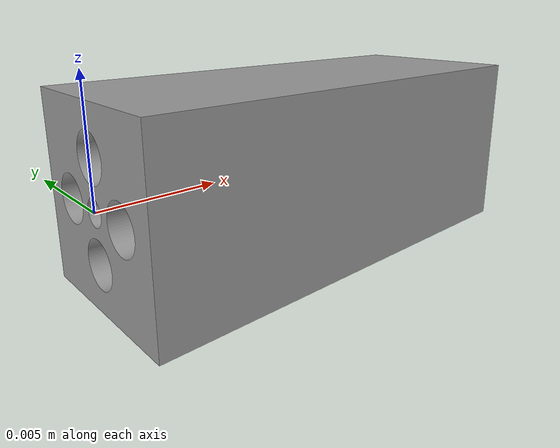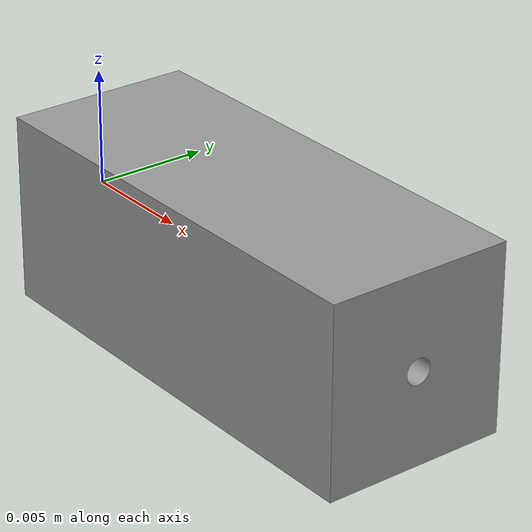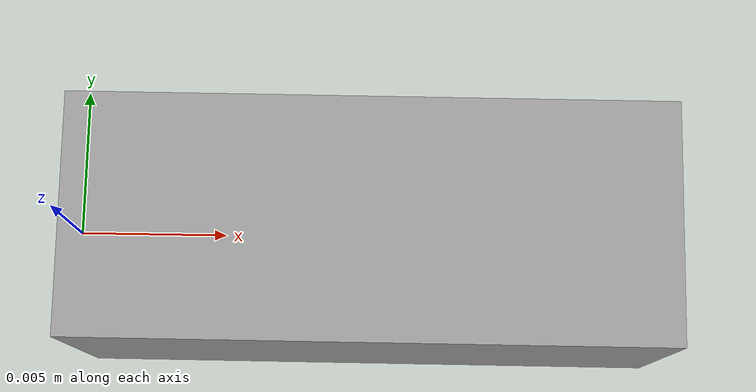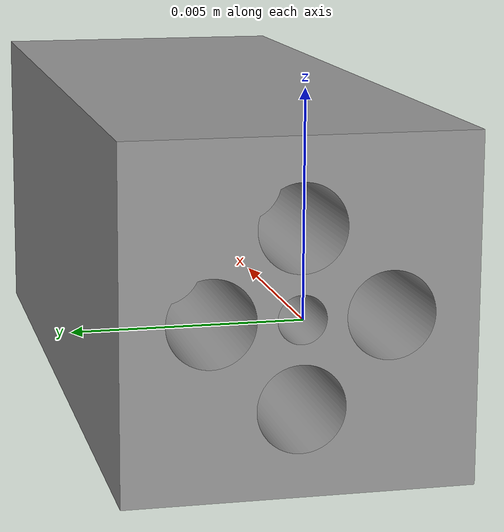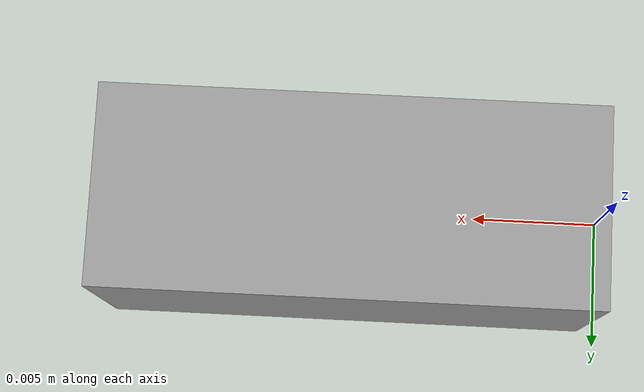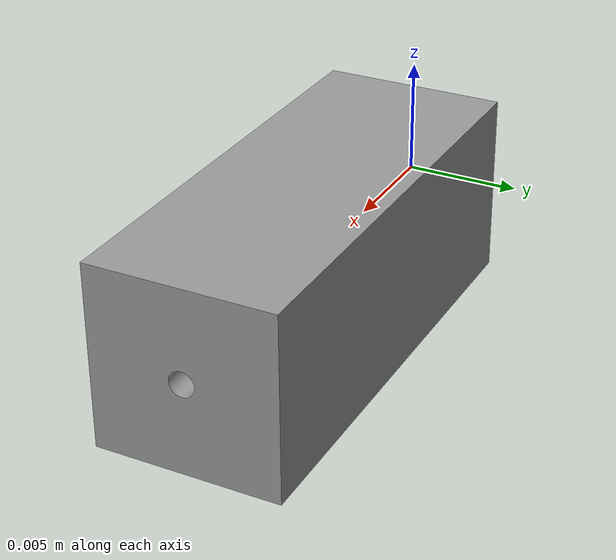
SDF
<?xml version="1.0"?>
<!--  |    This document was autogenerated by scene_to_spawner from holeaprile2color.dae       |  -->
<!--  |    EDITING THIS FILE BY HAND IS NOT RECOMMENDED                                        |  -->
<sdf version="1.4">
  <model name="hole">
    <static>true</static>
    <link name="link">
      <visual name="visual">
        <geometry>
          <mesh>
            <uri>file://$(env HOME)/.uwsim/data/objects/holeaprile2color.dae</uri>
          </mesh>
        </geometry>
      </visual>
      <collision name="collision">
        <geometry>
          <mesh>
            <uri>file://$(env HOME)/.uwsim/data/objects/holeaprile2color.dae</uri>
          </mesh>
        </geometry>
        <surface>
          <friction>
            <ode>
              <mu>100</mu>
              <mu2>50</mu2>
            </ode>
          </friction>
        </surface>
      </collision>
    </link>
  </model>
</sdf>
